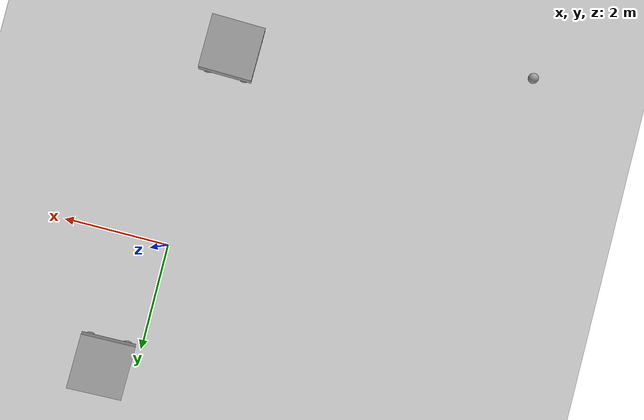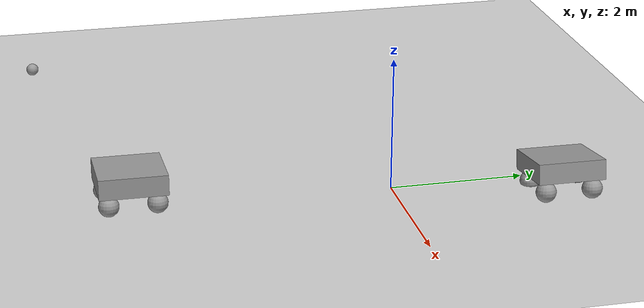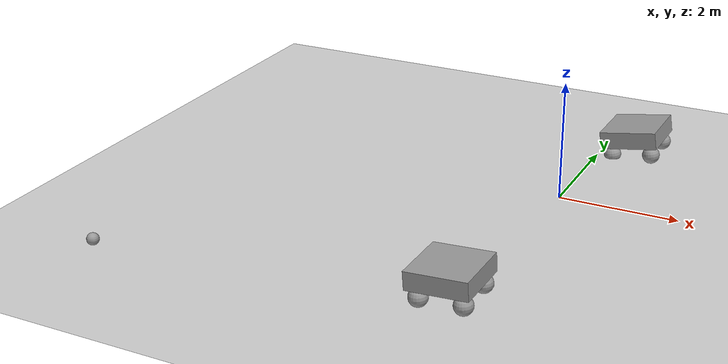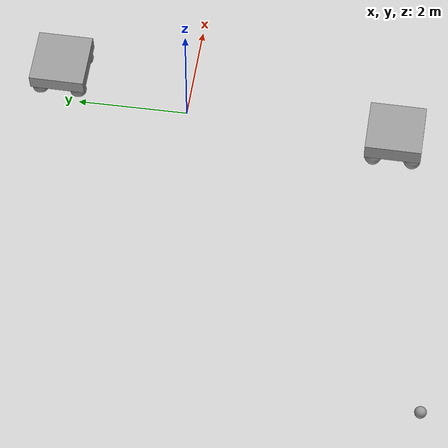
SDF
<sdf version="1.7">
 <world name="default">
  <model name="ground_plane">
   <static>1</static>
   <link name="link">
    <collision name="collision">
     <geometry><plane><normal>0 0 1</normal><size>100 100</size></plane></geometry>
     <surface>
      <contact><collide_bitmask>65535</collide_bitmask></contact>
      <friction><ode><mu>100</mu><mu2>50</mu2></ode></friction>
     </surface>
    </collision>
    <visual name="visual">
     <cast_shadows>0</cast_shadows>
     <geometry><plane><normal>0 0 1</normal><size>100 100</size></plane></geometry>
     <material>
      <script><uri>file://media/materials/scripts/gazebo.material</uri><name>Gazebo/Grey</name></script>
     </material>
    </visual>
   </link>
  </model>
  <model name="car">
   <link name="link_0_clone">
    <inertial>
     <mass>1</mass>
     <inertia><ixx>0.1</ixx><ixy>0</ixy><ixz>0</ixz><iyy>0.1</iyy><iyz>0</iyz><izz>0.1</izz></inertia>
    </inertial>
    <pose>0.35 -0.35 -0.06 0 -0 0</pose>
    <visual name="visual">
     <geometry><sphere><radius>0.15</radius></sphere></geometry>
     <material>
      <lighting>1</lighting>
      <script><uri>file://media/materials/scripts/gazebo.material</uri><name>Gazebo/Grey</name></script>
      <shader type="pixel"><normal_map>__default__</normal_map></shader>
      <ambient>0.3 0.3 0.3 1</ambient>
      <diffuse>0.7 0.7 0.7 1</diffuse>
      <specular>0.01 0.01 0.01 1</specular>
      <emissive>0 0 0 1</emissive>
     </material>
    </visual>
    <collision name="collision">
     <geometry><sphere><radius>0.15</radius></sphere></geometry>
     <surface>
      <friction>
       <ode><mu>1</mu><mu2>1</mu2><fdir1>0 0 0</fdir1><slip1>0</slip1><slip2>0</slip2></ode>
       <torsional>
        <coefficient>1</coefficient>
        <patch_radius>0</patch_radius>
        <surface_radius>0</surface_radius>
        <use_patch_radius>1</use_patch_radius>
        <ode><slip>0</slip></ode>
       </torsional>
      </friction>
      <bounce><restitution_coefficient>0</restitution_coefficient><threshold>1e+06</threshold></bounce>
      <contact>
       <collide_without_contact>0</collide_without_contact>
       <collide_without_contact_bitmask>1</collide_without_contact_bitmask>
       <collide_bitmask>1</collide_bitmask>
       <ode>
        <soft_cfm>0</soft_cfm>
        <soft_erp>0.2</soft_erp>
        <kp>1e+13</kp>
        <kd>1</kd>
        <max_vel>0.01</max_vel>
        <min_depth>0</min_depth>
       </ode>
       <bullet>
        <split_impulse>1</split_impulse>
        <split_impulse_penetration_threshold>-0.01</split_impulse_penetration_threshold>
        <soft_cfm>0</soft_cfm>
        <soft_erp>0.2</soft_erp>
        <kp>1e+13</kp>
        <kd>1</kd>
       </bullet>
      </contact>
     </surface>
    </collision>
   </link>
   <link name="link_0_clone_clone">
    <inertial>
     <mass>1</mass>
     <inertia><ixx>0.1</ixx><ixy>0</ixy><ixz>0</ixz><iyy>0.1</iyy><iyz>0</iyz><izz>0.1</izz></inertia>
    </inertial>
    <pose>-0.35 0.35 -0.06 0 -0 0</pose>
    <visual name="visual">
     <geometry><sphere><radius>0.15</radius></sphere></geometry>
     <material>
      <lighting>1</lighting>
      <script><uri>file://media/materials/scripts/gazebo.material</uri><name>Gazebo/Grey</name></script>
      <shader type="pixel"><normal_map>__default__</normal_map></shader>
      <ambient>0.3 0.3 0.3 1</ambient>
      <diffuse>0.7 0.7 0.7 1</diffuse>
      <specular>0.01 0.01 0.01 1</specular>
      <emissive>0 0 0 1</emissive>
     </material>
    </visual>
    <collision name="collision">
     <geometry><sphere><radius>0.15</radius></sphere></geometry>
     <surface>
      <friction>
       <ode><mu>1</mu><mu2>1</mu2><fdir1>0 0 0</fdir1><slip1>0</slip1><slip2>0</slip2></ode>
       <torsional>
        <coefficient>1</coefficient>
        <patch_radius>0</patch_radius>
        <surface_radius>0</surface_radius>
        <use_patch_radius>1</use_patch_radius>
        <ode><slip>0</slip></ode>
       </torsional>
      </friction>
      <bounce><restitution_coefficient>0</restitution_coefficient><threshold>1e+06</threshold></bounce>
      <contact>
       <collide_without_contact>0</collide_without_contact>
       <collide_without_contact_bitmask>1</collide_without_contact_bitmask>
       <collide_bitmask>1</collide_bitmask>
       <ode>
        <soft_cfm>0</soft_cfm>
        <soft_erp>0.2</soft_erp>
        <kp>1e+13</kp>
        <kd>1</kd>
        <max_vel>0.01</max_vel>
        <min_depth>0</min_depth>
       </ode>
       <bullet>
        <split_impulse>1</split_impulse>
        <split_impulse_penetration_threshold>-0.01</split_impulse_penetration_threshold>
        <soft_cfm>0</soft_cfm>
        <soft_erp>0.2</soft_erp>
        <kp>1e+13</kp>
        <kd>1</kd>
       </bullet>
      </contact>
     </surface>
    </collision>
   </link>
   <link name="link_0_clone_clone_0">
    <inertial>
     <mass>1</mass>
     <inertia><ixx>0.1</ixx><ixy>0</ixy><ixz>0</ixz><iyy>0.1</iyy><iyz>0</iyz><izz>0.1</izz></inertia>
    </inertial>
    <pose>-0.35 -0.35 -0.06 0 -0 0</pose>
    <visual name="visual">
     <geometry><sphere><radius>0.15</radius></sphere></geometry>
     <material>
      <lighting>1</lighting>
      <script><uri>file://media/materials/scripts/gazebo.material</uri><name>Gazebo/Grey</name></script>
      <shader type="pixel"><normal_map>__default__</normal_map></shader>
      <ambient>0.3 0.3 0.3 1</ambient>
      <diffuse>0.7 0.7 0.7 1</diffuse>
      <specular>0.01 0.01 0.01 1</specular>
      <emissive>0 0 0 1</emissive>
     </material>
    </visual>
    <collision name="collision">
     <geometry><sphere><radius>0.15</radius></sphere></geometry>
     <surface>
      <friction>
       <ode><mu>1</mu><mu2>1</mu2><fdir1>0 0 0</fdir1><slip1>0</slip1><slip2>0</slip2></ode>
       <torsional>
        <coefficient>1</coefficient>
        <patch_radius>0</patch_radius>
        <surface_radius>0</surface_radius>
        <use_patch_radius>1</use_patch_radius>
        <ode><slip>0</slip></ode>
       </torsional>
      </friction>
      <bounce><restitution_coefficient>0</restitution_coefficient><threshold>1e+06</threshold></bounce>
      <contact>
       <collide_without_contact>0</collide_without_contact>
       <collide_without_contact_bitmask>1</collide_without_contact_bitmask>
       <collide_bitmask>1</collide_bitmask>
       <ode>
        <soft_cfm>0</soft_cfm>
        <soft_erp>0.2</soft_erp>
        <kp>1e+13</kp>
        <kd>1</kd>
        <max_vel>0.01</max_vel>
        <min_depth>0</min_depth>
       </ode>
       <bullet>
        <split_impulse>1</split_impulse>
        <split_impulse_penetration_threshold>-0.01</split_impulse_penetration_threshold>
        <soft_cfm>0</soft_cfm>
        <soft_erp>0.2</soft_erp>
        <kp>1e+13</kp>
        <kd>1</kd>
       </bullet>
      </contact>
     </surface>
    </collision>
   </link>
   <link name="link_0_clone_clone_clone">
    <inertial>
     <mass>1</mass>
     <inertia><ixx>0.1</ixx><ixy>0</ixy><ixz>0</ixz><iyy>0.1</iyy><iyz>0</iyz><izz>0.1</izz></inertia>
    </inertial>
    <pose>0.35 0.35 -0.06 0 -0 0</pose>
    <visual name="visual">
     <geometry><sphere><radius>0.15</radius></sphere></geometry>
     <material>
      <lighting>1</lighting>
      <script><uri>file://media/materials/scripts/gazebo.material</uri><name>Gazebo/Grey</name></script>
      <shader type="pixel"><normal_map>__default__</normal_map></shader>
      <ambient>0.3 0.3 0.3 1</ambient>
      <diffuse>0.7 0.7 0.7 1</diffuse>
      <specular>0.01 0.01 0.01 1</specular>
      <emissive>0 0 0 1</emissive>
     </material>
    </visual>
    <collision name="collision">
     <geometry><sphere><radius>0.15</radius></sphere></geometry>
     <surface>
      <friction>
       <ode><mu>1</mu><mu2>1</mu2><fdir1>0 0 0</fdir1><slip1>0</slip1><slip2>0</slip2></ode>
       <torsional>
        <coefficient>1</coefficient>
        <patch_radius>0</patch_radius>
        <surface_radius>0</surface_radius>
        <use_patch_radius>1</use_patch_radius>
        <ode><slip>0</slip></ode>
       </torsional>
      </friction>
      <bounce><restitution_coefficient>0</restitution_coefficient><threshold>1e+06</threshold></bounce>
      <contact>
       <collide_without_contact>0</collide_without_contact>
       <collide_without_contact_bitmask>1</collide_without_contact_bitmask>
       <collide_bitmask>1</collide_bitmask>
       <ode>
        <soft_cfm>0</soft_cfm>
        <soft_erp>0.2</soft_erp>
        <kp>1e+13</kp>
        <kd>1</kd>
        <max_vel>0.01</max_vel>
        <min_depth>0</min_depth>
       </ode>
       <bullet>
        <split_impulse>1</split_impulse>
        <split_impulse_penetration_threshold>-0.01</split_impulse_penetration_threshold>
        <soft_cfm>0</soft_cfm>
        <soft_erp>0.2</soft_erp>
        <kp>1e+13</kp>
        <kd>1</kd>
       </bullet>
      </contact>
     </surface>
    </collision>
   </link>
   <link name="link_1">
    <inertial>
     <mass>1</mass>
     <inertia>
      <ixx>0.166667</ixx>
      <ixy>0</ixy>
      <ixz>0</ixz>
      <iyy>0.166667</iyy>
      <iyz>0</iyz>
      <izz>0.166667</izz>
     </inertia>
    </inertial>
    <pose>-0 0 0.24 0 -0 0</pose>
    <visual name="visual">
     <geometry><box><size>1 1 0.3</size></box></geometry>
     <material>
      <lighting>1</lighting>
      <script><uri>file://media/materials/scripts/gazebo.material</uri><name>Gazebo/Grey</name></script>
      <shader type="pixel"><normal_map>__default__</normal_map></shader>
      <ambient>0.3 0.3 0.3 1</ambient>
      <diffuse>0.7 0.7 0.7 1</diffuse>
      <specular>0.01 0.01 0.01 1</specular>
      <emissive>0 0 0 1</emissive>
     </material>
    </visual>
    <collision name="collision">
     <geometry><box><size>1 1 0.3</size></box></geometry>
     <surface>
      <friction>
       <ode><mu>1</mu><mu2>1</mu2><fdir1>0 0 0</fdir1><slip1>0</slip1><slip2>0</slip2></ode>
       <torsional>
        <coefficient>1</coefficient>
        <patch_radius>0</patch_radius>
        <surface_radius>0</surface_radius>
        <use_patch_radius>1</use_patch_radius>
        <ode><slip>0</slip></ode>
       </torsional>
      </friction>
      <bounce><restitution_coefficient>0</restitution_coefficient><threshold>1e+06</threshold></bounce>
      <contact>
       <collide_without_contact>0</collide_without_contact>
       <collide_without_contact_bitmask>1</collide_without_contact_bitmask>
       <collide_bitmask>1</collide_bitmask>
       <ode>
        <soft_cfm>0</soft_cfm>
        <soft_erp>0.2</soft_erp>
        <kp>1e+13</kp>
        <kd>1</kd>
        <max_vel>0.01</max_vel>
        <min_depth>0</min_depth>
       </ode>
       <bullet>
        <split_impulse>1</split_impulse>
        <split_impulse_penetration_threshold>-0.01</split_impulse_penetration_threshold>
        <soft_cfm>0</soft_cfm>
        <soft_erp>0.2</soft_erp>
        <kp>1e+13</kp>
        <kd>1</kd>
       </bullet>
      </contact>
     </surface>
    </collision>
   </link>
   <joint name="link_1_JOINT_0" type="revolute">
    <parent>link_1</parent>
    <child>link_0_clone_clone</child>
    <axis>
     <xyz>0 1 0</xyz>
     <limit>
      <lower>-1.79769e+308</lower>
      <upper>1.79769e+308</upper>
      <effort>-1</effort>
      <velocity>-1</velocity>
     </limit>
     <dynamics>
      <spring_reference>0</spring_reference>
      <spring_stiffness>0</spring_stiffness>
      <damping>0</damping>
     </dynamics>
    </axis>
    <physics>
     <ode><limit><cfm>0</cfm><erp>0.2</erp></limit><suspension><cfm>0</cfm><erp>0.2</erp></suspension></ode>
    </physics>
   </joint>
   <joint name="link_1_JOINT_1" type="revolute">
    <parent>link_1</parent>
    <child>link_0_clone_clone_clone</child>
    <axis>
     <xyz>0 1 0</xyz>
     <limit>
      <lower>-1.79769e+308</lower>
      <upper>1.79769e+308</upper>
      <effort>-1</effort>
      <velocity>-1</velocity>
     </limit>
     <dynamics>
      <spring_reference>0</spring_reference>
      <spring_stiffness>0</spring_stiffness>
      <damping>0</damping>
     </dynamics>
    </axis>
    <physics>
     <ode><limit><cfm>0</cfm><erp>0.2</erp></limit><suspension><cfm>0</cfm><erp>0.2</erp></suspension></ode>
    </physics>
   </joint>
   <joint name="link_1_JOINT_2" type="revolute">
    <parent>link_1</parent>
    <child>link_0_clone</child>
    <axis>
     <xyz>0 1 0</xyz>
     <limit>
      <lower>-1.79769e+308</lower>
      <upper>1.79769e+308</upper>
      <effort>-1</effort>
      <velocity>-1</velocity>
     </limit>
     <dynamics>
      <spring_reference>0</spring_reference>
      <spring_stiffness>0</spring_stiffness>
      <damping>0</damping>
     </dynamics>
    </axis>
    <physics>
     <ode><limit><cfm>0</cfm><erp>0.2</erp></limit><suspension><cfm>0</cfm><erp>0.2</erp></suspension></ode>
    </physics>
   </joint>
   <joint name="link_1_JOINT_3" type="revolute">
    <parent>link_1</parent>
    <child>link_0_clone_clone_0</child>
    <axis>
     <xyz>0 1 0</xyz>
     <limit>
      <lower>-1.79769e+308</lower>
      <upper>1.79769e+308</upper>
      <effort>-1</effort>
      <velocity>-1</velocity>
     </limit>
     <dynamics>
      <spring_reference>0</spring_reference>
      <spring_stiffness>0</spring_stiffness>
      <damping>0</damping>
     </dynamics>
    </axis>
    <physics>
     <ode><limit><cfm>0</cfm><erp>0.2</erp></limit><suspension><cfm>0</cfm><erp>0.2</erp></suspension></ode>
    </physics>
   </joint>
   <static>0</static>
   <pose>0.604379 2.40256 0.152562 3e-06 -0.162567 -0.011971</pose>
  </model>
  <model name="car_clone">
   <link name="link_0_clone">
    <inertial>
     <mass>1</mass>
     <inertia><ixx>0.1</ixx><ixy>0</ixy><ixz>0</ixz><iyy>0.1</iyy><iyz>0</iyz><izz>0.1</izz></inertia>
    </inertial>
    <pose>0.35 -0.35 -0.06 0 -0 0</pose>
    <visual name="visual">
     <geometry><sphere><radius>0.15</radius></sphere></geometry>
     <material>
      <lighting>1</lighting>
      <script><uri>file://media/materials/scripts/gazebo.material</uri><name>Gazebo/Grey</name></script>
      <shader type="pixel"><normal_map>__default__</normal_map></shader>
      <ambient>0.3 0.3 0.3 1</ambient>
      <diffuse>0.7 0.7 0.7 1</diffuse>
      <specular>0.01 0.01 0.01 1</specular>
      <emissive>0 0 0 1</emissive>
     </material>
    </visual>
    <collision name="collision">
     <geometry><sphere><radius>0.15</radius></sphere></geometry>
     <surface>
      <friction>
       <ode><mu>1</mu><mu2>1</mu2><fdir1>0 0 0</fdir1><slip1>0</slip1><slip2>0</slip2></ode>
       <torsional>
        <coefficient>1</coefficient>
        <patch_radius>0</patch_radius>
        <surface_radius>0</surface_radius>
        <use_patch_radius>1</use_patch_radius>
        <ode><slip>0</slip></ode>
       </torsional>
      </friction>
      <bounce><restitution_coefficient>0</restitution_coefficient><threshold>1e+06</threshold></bounce>
      <contact>
       <collide_without_contact>0</collide_without_contact>
       <collide_without_contact_bitmask>1</collide_without_contact_bitmask>
       <collide_bitmask>1</collide_bitmask>
       <ode>
        <soft_cfm>0</soft_cfm>
        <soft_erp>0.2</soft_erp>
        <kp>1e+13</kp>
        <kd>1</kd>
        <max_vel>0.01</max_vel>
        <min_depth>0</min_depth>
       </ode>
       <bullet>
        <split_impulse>1</split_impulse>
        <split_impulse_penetration_threshold>-0.01</split_impulse_penetration_threshold>
        <soft_cfm>0</soft_cfm>
        <soft_erp>0.2</soft_erp>
        <kp>1e+13</kp>
        <kd>1</kd>
       </bullet>
      </contact>
     </surface>
    </collision>
   </link>
   <link name="link_0_clone_clone">
    <inertial>
     <mass>1</mass>
     <inertia><ixx>0.1</ixx><ixy>0</ixy><ixz>0</ixz><iyy>0.1</iyy><iyz>0</iyz><izz>0.1</izz></inertia>
    </inertial>
    <pose>-0.35 0.35 -0.06 0 -0 0</pose>
    <visual name="visual">
     <geometry><sphere><radius>0.15</radius></sphere></geometry>
     <material>
      <lighting>1</lighting>
      <script><uri>file://media/materials/scripts/gazebo.material</uri><name>Gazebo/Grey</name></script>
      <shader type="pixel"><normal_map>__default__</normal_map></shader>
      <ambient>0.3 0.3 0.3 1</ambient>
      <diffuse>0.7 0.7 0.7 1</diffuse>
      <specular>0.01 0.01 0.01 1</specular>
      <emissive>0 0 0 1</emissive>
     </material>
    </visual>
    <collision name="collision">
     <geometry><sphere><radius>0.15</radius></sphere></geometry>
     <surface>
      <friction>
       <ode><mu>1</mu><mu2>1</mu2><fdir1>0 0 0</fdir1><slip1>0</slip1><slip2>0</slip2></ode>
       <torsional>
        <coefficient>1</coefficient>
        <patch_radius>0</patch_radius>
        <surface_radius>0</surface_radius>
        <use_patch_radius>1</use_patch_radius>
        <ode><slip>0</slip></ode>
       </torsional>
      </friction>
      <bounce><restitution_coefficient>0</restitution_coefficient><threshold>1e+06</threshold></bounce>
      <contact>
       <collide_without_contact>0</collide_without_contact>
       <collide_without_contact_bitmask>1</collide_without_contact_bitmask>
       <collide_bitmask>1</collide_bitmask>
       <ode>
        <soft_cfm>0</soft_cfm>
        <soft_erp>0.2</soft_erp>
        <kp>1e+13</kp>
        <kd>1</kd>
        <max_vel>0.01</max_vel>
        <min_depth>0</min_depth>
       </ode>
       <bullet>
        <split_impulse>1</split_impulse>
        <split_impulse_penetration_threshold>-0.01</split_impulse_penetration_threshold>
        <soft_cfm>0</soft_cfm>
        <soft_erp>0.2</soft_erp>
        <kp>1e+13</kp>
        <kd>1</kd>
       </bullet>
      </contact>
     </surface>
    </collision>
   </link>
   <link name="link_0_clone_clone_0">
    <inertial>
     <mass>1</mass>
     <inertia><ixx>0.1</ixx><ixy>0</ixy><ixz>0</ixz><iyy>0.1</iyy><iyz>0</iyz><izz>0.1</izz></inertia>
    </inertial>
    <pose>-0.35 -0.35 -0.06 0 -0 0</pose>
    <visual name="visual">
     <geometry><sphere><radius>0.15</radius></sphere></geometry>
     <material>
      <lighting>1</lighting>
      <script><uri>file://media/materials/scripts/gazebo.material</uri><name>Gazebo/Grey</name></script>
      <shader type="pixel"><normal_map>__default__</normal_map></shader>
      <ambient>0.3 0.3 0.3 1</ambient>
      <diffuse>0.7 0.7 0.7 1</diffuse>
      <specular>0.01 0.01 0.01 1</specular>
      <emissive>0 0 0 1</emissive>
     </material>
    </visual>
    <collision name="collision">
     <geometry><sphere><radius>0.15</radius></sphere></geometry>
     <surface>
      <friction>
       <ode><mu>1</mu><mu2>1</mu2><fdir1>0 0 0</fdir1><slip1>0</slip1><slip2>0</slip2></ode>
       <torsional>
        <coefficient>1</coefficient>
        <patch_radius>0</patch_radius>
        <surface_radius>0</surface_radius>
        <use_patch_radius>1</use_patch_radius>
        <ode><slip>0</slip></ode>
       </torsional>
      </friction>
      <bounce><restitution_coefficient>0</restitution_coefficient><threshold>1e+06</threshold></bounce>
      <contact>
       <collide_without_contact>0</collide_without_contact>
       <collide_without_contact_bitmask>1</collide_without_contact_bitmask>
       <collide_bitmask>1</collide_bitmask>
       <ode>
        <soft_cfm>0</soft_cfm>
        <soft_erp>0.2</soft_erp>
        <kp>1e+13</kp>
        <kd>1</kd>
        <max_vel>0.01</max_vel>
        <min_depth>0</min_depth>
       </ode>
       <bullet>
        <split_impulse>1</split_impulse>
        <split_impulse_penetration_threshold>-0.01</split_impulse_penetration_threshold>
        <soft_cfm>0</soft_cfm>
        <soft_erp>0.2</soft_erp>
        <kp>1e+13</kp>
        <kd>1</kd>
       </bullet>
      </contact>
     </surface>
    </collision>
   </link>
   <link name="link_0_clone_clone_clone">
    <inertial>
     <mass>1</mass>
     <inertia><ixx>0.1</ixx><ixy>0</ixy><ixz>0</ixz><iyy>0.1</iyy><iyz>0</iyz><izz>0.1</izz></inertia>
    </inertial>
    <pose>0.35 0.35 -0.06 0 -0 0</pose>
    <visual name="visual">
     <geometry><sphere><radius>0.15</radius></sphere></geometry>
     <material>
      <lighting>1</lighting>
      <script><uri>file://media/materials/scripts/gazebo.material</uri><name>Gazebo/Grey</name></script>
      <shader type="pixel"><normal_map>__default__</normal_map></shader>
      <ambient>0.3 0.3 0.3 1</ambient>
      <diffuse>0.7 0.7 0.7 1</diffuse>
      <specular>0.01 0.01 0.01 1</specular>
      <emissive>0 0 0 1</emissive>
     </material>
    </visual>
    <collision name="collision">
     <geometry><sphere><radius>0.15</radius></sphere></geometry>
     <surface>
      <friction>
       <ode><mu>1</mu><mu2>1</mu2><fdir1>0 0 0</fdir1><slip1>0</slip1><slip2>0</slip2></ode>
       <torsional>
        <coefficient>1</coefficient>
        <patch_radius>0</patch_radius>
        <surface_radius>0</surface_radius>
        <use_patch_radius>1</use_patch_radius>
        <ode><slip>0</slip></ode>
       </torsional>
      </friction>
      <bounce><restitution_coefficient>0</restitution_coefficient><threshold>1e+06</threshold></bounce>
      <contact>
       <collide_without_contact>0</collide_without_contact>
       <collide_without_contact_bitmask>1</collide_without_contact_bitmask>
       <collide_bitmask>1</collide_bitmask>
       <ode>
        <soft_cfm>0</soft_cfm>
        <soft_erp>0.2</soft_erp>
        <kp>1e+13</kp>
        <kd>1</kd>
        <max_vel>0.01</max_vel>
        <min_depth>0</min_depth>
       </ode>
       <bullet>
        <split_impulse>1</split_impulse>
        <split_impulse_penetration_threshold>-0.01</split_impulse_penetration_threshold>
        <soft_cfm>0</soft_cfm>
        <soft_erp>0.2</soft_erp>
        <kp>1e+13</kp>
        <kd>1</kd>
       </bullet>
      </contact>
     </surface>
    </collision>
   </link>
   <link name="link_1">
    <inertial>
     <mass>1</mass>
     <inertia>
      <ixx>0.166667</ixx>
      <ixy>0</ixy>
      <ixz>0</ixz>
      <iyy>0.166667</iyy>
      <iyz>0</iyz>
      <izz>0.166667</izz>
     </inertia>
    </inertial>
    <pose>-0 0 0.24 0 -0 0</pose>
    <visual name="visual">
     <geometry><box><size>1 1 0.3</size></box></geometry>
     <material>
      <lighting>1</lighting>
      <script><uri>file://media/materials/scripts/gazebo.material</uri><name>Gazebo/Grey</name></script>
      <shader type="pixel"><normal_map>__default__</normal_map></shader>
      <ambient>0.3 0.3 0.3 1</ambient>
      <diffuse>0.7 0.7 0.7 1</diffuse>
      <specular>0.01 0.01 0.01 1</specular>
      <emissive>0 0 0 1</emissive>
     </material>
    </visual>
    <collision name="collision">
     <geometry><box><size>1 1 0.3</size></box></geometry>
     <surface>
      <friction>
       <ode><mu>1</mu><mu2>1</mu2><fdir1>0 0 0</fdir1><slip1>0</slip1><slip2>0</slip2></ode>
       <torsional>
        <coefficient>1</coefficient>
        <patch_radius>0</patch_radius>
        <surface_radius>0</surface_radius>
        <use_patch_radius>1</use_patch_radius>
        <ode><slip>0</slip></ode>
       </torsional>
      </friction>
      <bounce><restitution_coefficient>0</restitution_coefficient><threshold>1e+06</threshold></bounce>
      <contact>
       <collide_without_contact>0</collide_without_contact>
       <collide_without_contact_bitmask>1</collide_without_contact_bitmask>
       <collide_bitmask>1</collide_bitmask>
       <ode>
        <soft_cfm>0</soft_cfm>
        <soft_erp>0.2</soft_erp>
        <kp>1e+13</kp>
        <kd>1</kd>
        <max_vel>0.01</max_vel>
        <min_depth>0</min_depth>
       </ode>
       <bullet>
        <split_impulse>1</split_impulse>
        <split_impulse_penetration_threshold>-0.01</split_impulse_penetration_threshold>
        <soft_cfm>0</soft_cfm>
        <soft_erp>0.2</soft_erp>
        <kp>1e+13</kp>
        <kd>1</kd>
       </bullet>
      </contact>
     </surface>
    </collision>
   </link>
   <joint name="link_1_JOINT_0" type="revolute">
    <parent>link_1</parent>
    <child>link_0_clone_clone</child>
    <axis>
     <xyz>0 1 0</xyz>
     <limit>
      <lower>-1.79769e+308</lower>
      <upper>1.79769e+308</upper>
      <effort>-1</effort>
      <velocity>-1</velocity>
     </limit>
     <dynamics>
      <spring_reference>0</spring_reference>
      <spring_stiffness>0</spring_stiffness>
      <damping>0</damping>
     </dynamics>
    </axis>
    <physics>
     <ode><limit><cfm>0</cfm><erp>0.2</erp></limit><suspension><cfm>0</cfm><erp>0.2</erp></suspension></ode>
    </physics>
   </joint>
   <joint name="link_1_JOINT_1" type="revolute">
    <parent>link_1</parent>
    <child>link_0_clone_clone_clone</child>
    <axis>
     <xyz>0 1 0</xyz>
     <limit>
      <lower>-1.79769e+308</lower>
      <upper>1.79769e+308</upper>
      <effort>-1</effort>
      <velocity>-1</velocity>
     </limit>
     <dynamics>
      <spring_reference>0</spring_reference>
      <spring_stiffness>0</spring_stiffness>
      <damping>0</damping>
     </dynamics>
    </axis>
    <physics>
     <ode><limit><cfm>0</cfm><erp>0.2</erp></limit><suspension><cfm>0</cfm><erp>0.2</erp></suspension></ode>
    </physics>
   </joint>
   <joint name="link_1_JOINT_2" type="revolute">
    <parent>link_1</parent>
    <child>link_0_clone</child>
    <axis>
     <xyz>0 1 0</xyz>
     <limit>
      <lower>-1.79769e+308</lower>
      <upper>1.79769e+308</upper>
      <effort>-1</effort>
      <velocity>-1</velocity>
     </limit>
     <dynamics>
      <spring_reference>0</spring_reference>
      <spring_stiffness>0</spring_stiffness>
      <damping>0</damping>
     </dynamics>
    </axis>
    <physics>
     <ode><limit><cfm>0</cfm><erp>0.2</erp></limit><suspension><cfm>0</cfm><erp>0.2</erp></suspension></ode>
    </physics>
   </joint>
   <joint name="link_1_JOINT_3" type="revolute">
    <parent>link_1</parent>
    <child>link_0_clone_clone_0</child>
    <axis>
     <xyz>0 1 0</xyz>
     <limit>
      <lower>-1.79769e+308</lower>
      <upper>1.79769e+308</upper>
      <effort>-1</effort>
      <velocity>-1</velocity>
     </limit>
     <dynamics>
      <spring_reference>0</spring_reference>
      <spring_stiffness>0</spring_stiffness>
      <damping>0</damping>
     </dynamics>
    </axis>
    <physics>
     <ode><limit><cfm>0</cfm><erp>0.2</erp></limit><suspension><cfm>0</cfm><erp>0.2</erp></suspension></ode>
    </physics>
   </joint>
   <static>0</static>
   <pose>-0.269485 -3.80399 0.187195 -3e-06 -0.064839 -0.012406</pose>
  </model>
  <model name="my_ball">
   <link name="link_0">
    <inertial>
     <mass>1</mass>
     <inertia><ixx>0.1</ixx><ixy>0</ixy><ixz>0</ixz><iyy>0.1</iyy><iyz>0</iyz><izz>0.1</izz></inertia>
    </inertial>
    <visual name="visual">
     <geometry><sphere><radius>0.1</radius></sphere></geometry>
     <material>
      <lighting>1</lighting>
      <script><uri>file://media/materials/scripts/gazebo.material</uri><name>Gazebo/Grey</name></script>
      <shader type="pixel"><normal_map>__default__</normal_map></shader>
      <ambient>1 1 1 1</ambient>
      <diffuse>1 1 1 1</diffuse>
      <specular>1 1 1 1</specular>
      <emissive>1 1 1 1</emissive>
     </material>
    </visual>
    <collision name="collision">
     <geometry><sphere><radius>0.1</radius></sphere></geometry>
     <surface>
      <friction>
       <ode><mu>1</mu><mu2>1</mu2><fdir1>0 0 0</fdir1><slip1>0</slip1><slip2>0</slip2></ode>
       <torsional>
        <coefficient>1</coefficient>
        <patch_radius>0</patch_radius>
        <surface_radius>0</surface_radius>
        <use_patch_radius>1</use_patch_radius>
        <ode><slip>0</slip></ode>
       </torsional>
      </friction>
      <bounce><restitution_coefficient>0</restitution_coefficient><threshold>1e+06</threshold></bounce>
      <contact>
       <collide_without_contact>0</collide_without_contact>
       <collide_without_contact_bitmask>1</collide_without_contact_bitmask>
       <collide_bitmask>1</collide_bitmask>
       <ode>
        <soft_cfm>0</soft_cfm>
        <soft_erp>0.2</soft_erp>
        <kp>1e+13</kp>
        <kd>1</kd>
        <max_vel>0.01</max_vel>
        <min_depth>0</min_depth>
       </ode>
       <bullet>
        <split_impulse>1</split_impulse>
        <split_impulse_penetration_threshold>-0.01</split_impulse_penetration_threshold>
        <soft_cfm>0</soft_cfm>
        <soft_erp>0.2</soft_erp>
        <kp>1e+13</kp>
        <kd>1</kd>
       </bullet>
      </contact>
     </surface>
    </collision>
   </link>
   <static>0</static>
   <pose>-5.85447 -4.73168 0.1 0 -0 0</pose>
  </model>
 </world>
</sdf>
